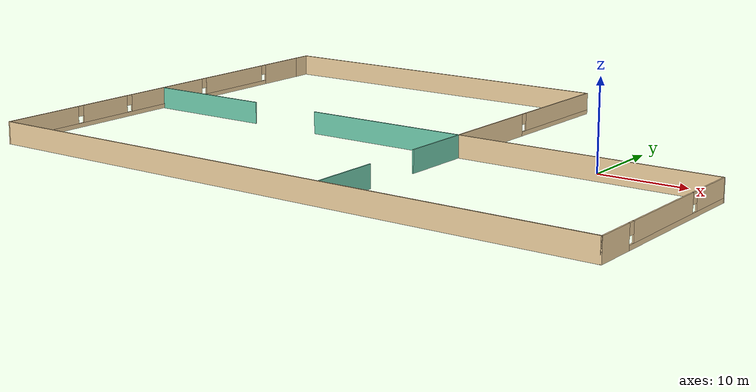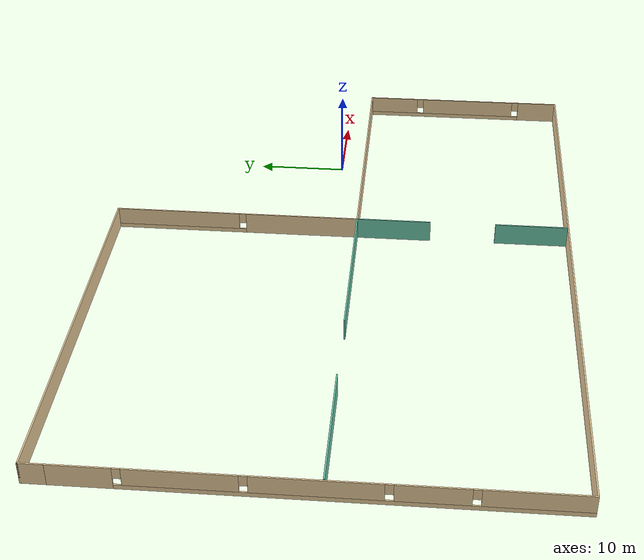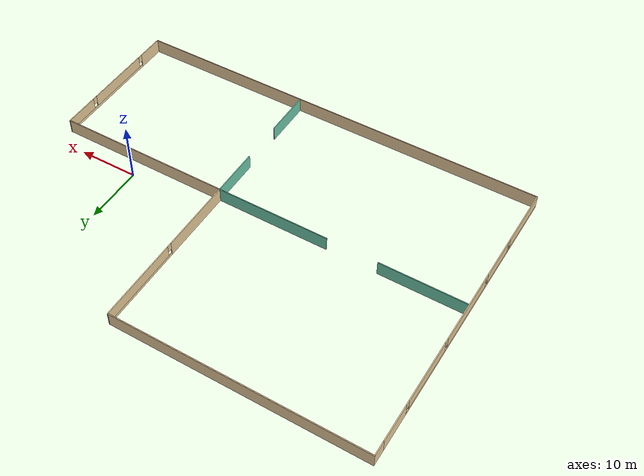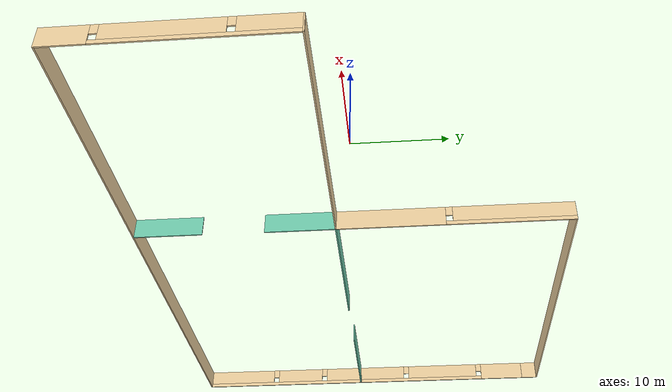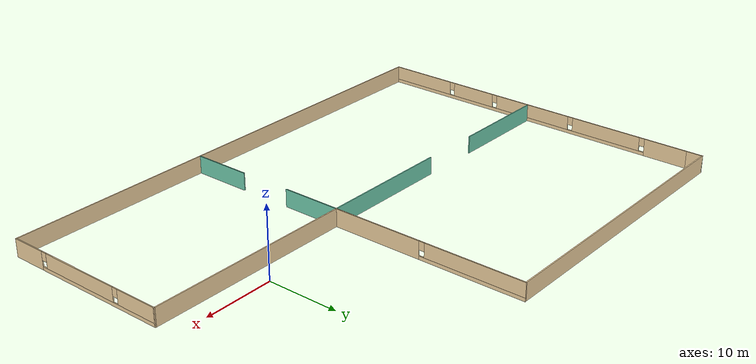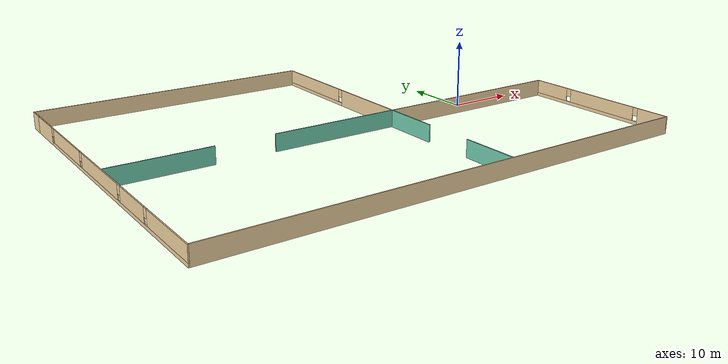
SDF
<?xml version='1.0'?>
<sdf version='1.6'>
  <model name='office'>
    <pose frame=''>-21.3047 -0.970661 0 0 -0 0</pose>
    <link name='Wall_61'>
      <pose frame=''>-36.05 -1.1751 0 0 0 -1.5708</pose>
      <visual name='Wall_61_Visual_0'>
        <pose frame=''>-21.7056 0 1.25 0 -0 0</pose>
        <geometry>
          <box>
            <size>6.33884 0.15 2.5</size>
          </box>
        </geometry>
        <material>
          <script>
            <uri>file://media/materials/scripts/gazebo.material</uri>
            <name>Gazebo/Grey</name>
          </script>
          <ambient>0.921569 0.807843 0.615686 1</ambient>
        </material>
        <meta>
          <layer>0</layer>
        </meta>
      </visual>
      <collision name='Wall_61_Collision_0'>
        <geometry>
          <box>
            <size>6.33884 0.15 2.5</size>
          </box>
        </geometry>
        <pose frame=''>-21.7056 0 1.25 0 -0 0</pose>
      </collision>
      <visual name='Wall_61_Visual_1'>
        <pose frame=''>3.16942 0 0.25 0 -0 0</pose>
        <geometry>
          <box>
            <size>43.4112 0.15 0.5</size>
          </box>
        </geometry>
        <material>
          <script>
            <uri>file://media/materials/scripts/gazebo.material</uri>
            <name>Gazebo/Grey</name>
          </script>
          <ambient>0.921569 0.807843 0.615686 1</ambient>
        </material>
        <meta>
          <layer>0</layer>
        </meta>
      </visual>
      <collision name='Wall_61_Collision_1'>
        <geometry>
          <box>
            <size>43.4112 0.15 0.5</size>
          </box>
        </geometry>
        <pose frame=''>3.16942 0 0.25 0 -0 0</pose>
      </collision>
      <visual name='Wall_61_Visual_2'>
        <pose frame=''>-12.3837 0 1.5 0 -0 0</pose>
        <geometry>
          <box>
            <size>10.705 0.15 2</size>
          </box>
        </geometry>
        <material>
          <script>
            <uri>file://media/materials/scripts/gazebo.material</uri>
            <name>Gazebo/Grey</name>
          </script>
          <ambient>0.921569 0.807843 0.615686 1</ambient>
        </material>
        <meta>
          <layer>0</layer>
        </meta>
      </visual>
      <collision name='Wall_61_Collision_2'>
        <geometry>
          <box>
            <size>10.705 0.15 2</size>
          </box>
        </geometry>
        <pose frame=''>-12.3837 0 1.5 0 -0 0</pose>
      </collision>
      <visual name='Wall_61_Visual_3'>
        <pose frame=''>-0.074173 0 1.5 0 -0 0</pose>
        <geometry>
          <box>
            <size>12.314 0.15 2</size>
          </box>
        </geometry>
        <material>
          <script>
            <uri>file://media/materials/scripts/gazebo.material</uri>
            <name>Gazebo/Grey</name>
          </script>
          <ambient>0.921569 0.807843 0.615686 1</ambient>
        </material>
        <meta>
          <layer>0</layer>
        </meta>
      </visual>
      <collision name='Wall_61_Collision_3'>
        <geometry>
          <box>
            <size>12.314 0.15 2</size>
          </box>
        </geometry>
        <pose frame=''>-0.074173 0 1.5 0 -0 0</pose>
      </collision>
      <visual name='Wall_61_Visual_4'>
        <pose frame=''>10.3849 0 1.5 0 -0 0</pose>
        <geometry>
          <box>
            <size>7.00407 0.15 2</size>
          </box>
        </geometry>
        <material>
          <script>
            <uri>file://media/materials/scripts/gazebo.material</uri>
            <name>Gazebo/Grey</name>
          </script>
          <ambient>0.921569 0.807843 0.615686 1</ambient>
        </material>
        <meta>
          <layer>0</layer>
        </meta>
      </visual>
      <collision name='Wall_61_Collision_4'>
        <geometry>
          <box>
            <size>7.00407 0.15 2</size>
          </box>
        </geometry>
        <pose frame=''>10.3849 0 1.5 0 -0 0</pose>
      </collision>
      <visual name='Wall_61_Visual_5'>
        <pose frame=''>19.781 0 1.5 0 -0 0</pose>
        <geometry>
          <box>
            <size>10.1881 0.15 2</size>
          </box>
        </geometry>
        <material>
          <script>
            <uri>file://media/materials/scripts/gazebo.material</uri>
            <name>Gazebo/Grey</name>
          </script>
          <ambient>0.921569 0.807843 0.615686 1</ambient>
        </material>
        <meta>
          <layer>0</layer>
        </meta>
      </visual>
      <collision name='Wall_61_Collision_5'>
        <geometry>
          <box>
            <size>10.1881 0.15 2</size>
          </box>
        </geometry>
        <pose frame=''>19.781 0 1.5 0 -0 0</pose>
      </collision>
      <visual name='Wall_61_Visual_6'>
        <pose frame=''>-18.1362 0 1.9 0 -0 0</pose>
        <geometry>
          <box>
            <size>0.8 0.15 1.2</size>
          </box>
        </geometry>
        <material>
          <script>
            <uri>file://media/materials/scripts/gazebo.material</uri>
            <name>Gazebo/Grey</name>
          </script>
          <ambient>0.921569 0.807843 0.615686 1</ambient>
        </material>
        <meta>
          <layer>0</layer>
        </meta>
      </visual>
      <collision name='Wall_61_Collision_6'>
        <geometry>
          <box>
            <size>0.8 0.15 1.2</size>
          </box>
        </geometry>
        <pose frame=''>-18.1362 0 1.9 0 -0 0</pose>
      </collision>
      <visual name='Wall_61_Visual_7'>
        <pose frame=''>-6.6312 0 1.9 0 -0 0</pose>
        <geometry>
          <box>
            <size>0.8 0.15 1.2</size>
          </box>
        </geometry>
        <material>
          <script>
            <uri>file://media/materials/scripts/gazebo.material</uri>
            <name>Gazebo/Grey</name>
          </script>
          <ambient>0.921569 0.807843 0.615686 1</ambient>
        </material>
        <meta>
          <layer>0</layer>
        </meta>
      </visual>
      <collision name='Wall_61_Collision_7'>
        <geometry>
          <box>
            <size>0.8 0.15 1.2</size>
          </box>
        </geometry>
        <pose frame=''>-6.6312 0 1.9 0 -0 0</pose>
      </collision>
      <visual name='Wall_61_Visual_8'>
        <pose frame=''>6.48285 0 1.9 0 -0 0</pose>
        <geometry>
          <box>
            <size>0.8 0.15 1.2</size>
          </box>
        </geometry>
        <material>
          <script>
            <uri>file://media/materials/scripts/gazebo.material</uri>
            <name>Gazebo/Grey</name>
          </script>
          <ambient>0.921569 0.807843 0.615686 1</ambient>
        </material>
        <meta>
          <layer>0</layer>
        </meta>
      </visual>
      <collision name='Wall_61_Collision_8'>
        <geometry>
          <box>
            <size>0.8 0.15 1.2</size>
          </box>
        </geometry>
        <pose frame=''>6.48285 0 1.9 0 -0 0</pose>
      </collision>
      <visual name='Wall_61_Visual_9'>
        <pose frame=''>14.2869 0 1.9 0 -0 0</pose>
        <geometry>
          <box>
            <size>0.8 0.15 1.2</size>
          </box>
        </geometry>
        <material>
          <script>
            <uri>file://media/materials/scripts/gazebo.material</uri>
            <name>Gazebo/Grey</name>
          </script>
          <ambient>0.921569 0.807843 0.615686 1</ambient>
        </material>
        <meta>
          <layer>0</layer>
        </meta>
      </visual>
      <collision name='Wall_61_Collision_9'>
        <geometry>
          <box>
            <size>0.8 0.15 1.2</size>
          </box>
        </geometry>
        <pose frame=''>14.2869 0 1.9 0 -0 0</pose>
      </collision>
    </link>
    <link name='Wall_62'>
      <collision name='Wall_62_Collision'>
        <geometry>
          <box>
            <size>72.25 0.15 2.5</size>
          </box>
        </geometry>
        <pose frame=''>0 0 1.25 0 -0 0</pose>
      </collision>
      <visual name='Wall_62_Visual'>
        <pose frame=''>0 0 1.25 0 -0 0</pose>
        <geometry>
          <box>
            <size>72.25 0.15 2.5</size>
          </box>
        </geometry>
        <material>
          <script>
            <uri>file://media/materials/scripts/gazebo.material</uri>
            <name>Gazebo/Grey</name>
          </script>
          <ambient>0.921569 0.807843 0.615686 1</ambient>
        </material>
        <meta>
          <layer>0</layer>
        </meta>
      </visual>
      <pose frame=''>1e-06 -25.9751 0 0 -0 0</pose>
    </link>
    <link name='Wall_63'>
      <pose frame=''>36.05 -13.9251 0 0 -0 1.5708</pose>
      <visual name='Wall_63_Visual_0'>
        <pose frame=''>-9.68595 0 1.25 0 -0 0</pose>
        <geometry>
          <box>
            <size>4.8781 0.15 2.5</size>
          </box>
        </geometry>
        <material>
          <script>
            <uri>file://media/materials/scripts/gazebo.material</uri>
            <name>Gazebo/Grey</name>
          </script>
          <ambient>0.921569 0.807843 0.615686 1</ambient>
        </material>
        <meta>
          <layer>0</layer>
        </meta>
      </visual>
      <collision name='Wall_63_Collision_0'>
        <geometry>
          <box>
            <size>4.8781 0.15 2.5</size>
          </box>
        </geometry>
        <pose frame=''>-9.68595 0 1.25 0 -0 0</pose>
      </collision>
      <visual name='Wall_63_Visual_1'>
        <pose frame=''>2.43905 0 0.25 0 -0 0</pose>
        <geometry>
          <box>
            <size>19.3719 0.15 0.5</size>
          </box>
        </geometry>
        <material>
          <script>
            <uri>file://media/materials/scripts/gazebo.material</uri>
            <name>Gazebo/Grey</name>
          </script>
          <ambient>0.921569 0.807843 0.615686 1</ambient>
        </material>
        <meta>
          <layer>0</layer>
        </meta>
      </visual>
      <collision name='Wall_63_Collision_1'>
        <geometry>
          <box>
            <size>19.3719 0.15 0.5</size>
          </box>
        </geometry>
        <pose frame=''>2.43905 0 0.25 0 -0 0</pose>
      </collision>
      <visual name='Wall_63_Visual_2'>
        <pose frame=''>-0.611693 0 1.5 0 -0 0</pose>
        <geometry>
          <box>
            <size>11.6704 0.15 2</size>
          </box>
        </geometry>
        <material>
          <script>
            <uri>file://media/materials/scripts/gazebo.material</uri>
            <name>Gazebo/Grey</name>
          </script>
          <ambient>0.921569 0.807843 0.615686 1</ambient>
        </material>
        <meta>
          <layer>0</layer>
        </meta>
      </visual>
      <collision name='Wall_63_Collision_2'>
        <geometry>
          <box>
            <size>11.6704 0.15 2</size>
          </box>
        </geometry>
        <pose frame=''>-0.611693 0 1.5 0 -0 0</pose>
      </collision>
      <visual name='Wall_63_Visual_3'>
        <pose frame=''>9.07426 0 1.5 0 -0 0</pose>
        <geometry>
          <box>
            <size>6.10149 0.15 2</size>
          </box>
        </geometry>
        <material>
          <script>
            <uri>file://media/materials/scripts/gazebo.material</uri>
            <name>Gazebo/Grey</name>
          </script>
          <ambient>0.921569 0.807843 0.615686 1</ambient>
        </material>
        <meta>
          <layer>0</layer>
        </meta>
      </visual>
      <collision name='Wall_63_Collision_3'>
        <geometry>
          <box>
            <size>6.10149 0.15 2</size>
          </box>
        </geometry>
        <pose frame=''>9.07426 0 1.5 0 -0 0</pose>
      </collision>
      <visual name='Wall_63_Visual_4'>
        <pose frame=''>-6.8469 0 1.9 0 -0 0</pose>
        <geometry>
          <box>
            <size>0.8 0.15 1.2</size>
          </box>
        </geometry>
        <material>
          <script>
            <uri>file://media/materials/scripts/gazebo.material</uri>
            <name>Gazebo/Grey</name>
          </script>
          <ambient>0.921569 0.807843 0.615686 1</ambient>
        </material>
        <meta>
          <layer>0</layer>
        </meta>
      </visual>
      <collision name='Wall_63_Collision_4'>
        <geometry>
          <box>
            <size>0.8 0.15 1.2</size>
          </box>
        </geometry>
        <pose frame=''>-6.8469 0 1.9 0 -0 0</pose>
      </collision>
      <visual name='Wall_63_Visual_5'>
        <pose frame=''>5.62351 0 1.9 0 -0 0</pose>
        <geometry>
          <box>
            <size>0.8 0.15 1.2</size>
          </box>
        </geometry>
        <material>
          <script>
            <uri>file://media/materials/scripts/gazebo.material</uri>
            <name>Gazebo/Grey</name>
          </script>
          <ambient>0.921569 0.807843 0.615686 1</ambient>
        </material>
        <meta>
          <layer>0</layer>
        </meta>
      </visual>
      <collision name='Wall_63_Collision_5'>
        <geometry>
          <box>
            <size>0.8 0.15 1.2</size>
          </box>
        </geometry>
        <pose frame=''>5.62351 0 1.9 0 -0 0</pose>
      </collision>
    </link>
    <link name='Wall_64'>
      <collision name='Wall_64_Collision'>
        <geometry>
          <box>
            <size>29.75 0.15 2.5</size>
          </box>
        </geometry>
        <pose frame=''>0 0 1.25 0 -0 0</pose>
      </collision>
      <visual name='Wall_64_Visual'>
        <pose frame=''>0 0 1.25 0 -0 0</pose>
        <geometry>
          <box>
            <size>29.75 0.15 2.5</size>
          </box>
        </geometry>
        <material>
          <script>
            <uri>file://media/materials/scripts/gazebo.material</uri>
            <name>Gazebo/Grey</name>
          </script>
          <ambient>0.921569 0.807843 0.615686 1</ambient>
        </material>
        <meta>
          <layer>0</layer>
        </meta>
      </visual>
      <pose frame=''>21.25 -1.8751 0 0 -0 3.14159</pose>
    </link>
    <link name='Wall_69'>
      <collision name='Wall_69_Collision'>
        <geometry>
          <box>
            <size>2.5 0.15 2.5</size>
          </box>
        </geometry>
        <pose frame=''>0 0 1.25 0 -0 0</pose>
      </collision>
      <visual name='Wall_69_Visual'>
        <pose frame=''>0 0 1.25 0 -0 0</pose>
        <geometry>
          <box>
            <size>2.5 0.15 2.5</size>
          </box>
        </geometry>
        <material>
          <script>
            <uri>file://media/materials/scripts/gazebo.material</uri>
            <name>Gazebo/Grey</name>
          </script>
          <ambient>0.921569 0.807843 0.615686 1</ambient>
        </material>
        <meta>
          <layer>0</layer>
        </meta>
      </visual>
      <pose frame=''>-36.05 24.7999 0 0 -0 1.5708</pose>
    </link>
    <link name='Wall_70'>
      <collision name='Wall_70_Collision'>
        <geometry>
          <box>
            <size>42.5 0.15 2.5</size>
          </box>
        </geometry>
        <pose frame=''>0 0 1.25 0 -0 0</pose>
      </collision>
      <visual name='Wall_70_Visual'>
        <pose frame=''>0 0 1.25 0 -0 0</pose>
        <geometry>
          <box>
            <size>42.5 0.15 2.5</size>
          </box>
        </geometry>
        <material>
          <script>
            <uri>file://media/materials/scripts/gazebo.material</uri>
            <name>Gazebo/Grey</name>
          </script>
          <ambient>0.921569 0.807843 0.615686 1</ambient>
        </material>
        <meta>
          <layer>0</layer>
        </meta>
      </visual>
      <pose frame=''>-14.875 25.9749 0 0 -0 0</pose>
    </link>
    <link name='Wall_74'>
      <pose frame=''>6.45 12.0499 0 0 -0 1.5708</pose>
      <visual name='Wall_74_Visual_0'>
        <pose frame=''>-7.52019 0 1.25 0 -0 0</pose>
        <geometry>
          <box>
            <size>12.96 0.15 2.5</size>
          </box>
        </geometry>
        <material>
          <script>
            <uri>file://media/materials/scripts/gazebo.material</uri>
            <name>Gazebo/Grey</name>
          </script>
          <ambient>0.921569 0.807843 0.615686 1</ambient>
        </material>
        <meta>
          <layer>0</layer>
        </meta>
      </visual>
      <collision name='Wall_74_Collision_0'>
        <geometry>
          <box>
            <size>12.96 0.15 2.5</size>
          </box>
        </geometry>
        <pose frame=''>-7.52019 0 1.25 0 -0 0</pose>
      </collision>
      <visual name='Wall_74_Visual_1'>
        <pose frame=''>6.48001 0 0.25 0 -0 0</pose>
        <geometry>
          <box>
            <size>15.0404 0.15 0.5</size>
          </box>
        </geometry>
        <material>
          <script>
            <uri>file://media/materials/scripts/gazebo.material</uri>
            <name>Gazebo/Grey</name>
          </script>
          <ambient>0.921569 0.807843 0.615686 1</ambient>
        </material>
        <meta>
          <layer>0</layer>
        </meta>
      </visual>
      <collision name='Wall_74_Collision_1'>
        <geometry>
          <box>
            <size>15.0404 0.15 0.5</size>
          </box>
        </geometry>
        <pose frame=''>6.48001 0 0.25 0 -0 0</pose>
      </collision>
      <visual name='Wall_74_Visual_2'>
        <pose frame=''>6.88001 0 1.5 0 -0 0</pose>
        <geometry>
          <box>
            <size>14.2404 0.15 2</size>
          </box>
        </geometry>
        <material>
          <script>
            <uri>file://media/materials/scripts/gazebo.material</uri>
            <name>Gazebo/Grey</name>
          </script>
          <ambient>0.921569 0.807843 0.615686 1</ambient>
        </material>
        <meta>
          <layer>0</layer>
        </meta>
      </visual>
      <collision name='Wall_74_Collision_2'>
        <geometry>
          <box>
            <size>14.2404 0.15 2</size>
          </box>
        </geometry>
        <pose frame=''>6.88001 0 1.5 0 -0 0</pose>
      </collision>
      <visual name='Wall_74_Visual_3'>
        <pose frame=''>-0.640185 0 1.9 0 -0 0</pose>
        <geometry>
          <box>
            <size>0.8 0.15 1.2</size>
          </box>
        </geometry>
        <material>
          <script>
            <uri>file://media/materials/scripts/gazebo.material</uri>
            <name>Gazebo/Grey</name>
          </script>
          <ambient>0.921569 0.807843 0.615686 1</ambient>
        </material>
        <meta>
          <layer>0</layer>
        </meta>
      </visual>
      <collision name='Wall_74_Collision_3'>
        <geometry>
          <box>
            <size>0.8 0.15 1.2</size>
          </box>
        </geometry>
        <pose frame=''>-0.640185 0 1.9 0 -0 0</pose>
      </collision>
    </link>
    <link name='Wall_76'>
      <collision name='Wall_76_Collision'>
        <geometry>
          <box>
            <size>19.25 0.15 2.5</size>
          </box>
        </geometry>
        <pose frame=''>0 0 1.25 0 -0 0</pose>
      </collision>
      <visual name='Wall_76_Visual'>
        <pose frame=''>0 0 1.25 0 -0 0</pose>
        <geometry>
          <box>
            <size>19.25 0.15 2.5</size>
          </box>
        </geometry>
        <material>
          <script>
            <uri>file://media/materials/scripts/gazebo.material</uri>
            <name>Gazebo/Grey</name>
          </script>
          <ambient>0.435294 0.796078 0.67451 1</ambient>
        </material>
        <meta>
          <layer>0</layer>
        </meta>
      </visual>
      <pose frame=''>-3.1 -1.8751 0 0 -0 3.14159</pose>
    </link>
    <link name='Wall_78'>
      <collision name='Wall_78_Collision'>
        <geometry>
          <box>
            <size>14.5 0.15 2.5</size>
          </box>
        </geometry>
        <pose frame=''>0 0 1.25 0 -0 0</pose>
      </collision>
      <visual name='Wall_78_Visual'>
        <pose frame=''>0 0 1.25 0 -0 0</pose>
        <geometry>
          <box>
            <size>14.5 0.15 2.5</size>
          </box>
        </geometry>
        <material>
          <script>
            <uri>file://media/materials/scripts/gazebo.material</uri>
            <name>Gazebo/Grey</name>
          </script>
          <ambient>0.435294 0.796078 0.67451 1</ambient>
        </material>
        <meta>
          <layer>0</layer>
        </meta>
      </visual>
      <pose frame=''>-28.6169 -1.80663 0 0 -0 3.14159</pose>
    </link>
    <link name='Wall_80'>
      <collision name='Wall_80_Collision'>
        <geometry>
          <box>
            <size>8.5 0.15 2.5</size>
          </box>
        </geometry>
        <pose frame=''>0 0 1.25 0 -0 0</pose>
      </collision>
      <visual name='Wall_80_Visual'>
        <pose frame=''>0 0 1.25 0 -0 0</pose>
        <geometry>
          <box>
            <size>8.5 0.15 2.5</size>
          </box>
        </geometry>
        <material>
          <script>
            <uri>file://media/materials/scripts/gazebo.material</uri>
            <name>Gazebo/Grey</name>
          </script>
          <ambient>0.435294 0.796078 0.67451 1</ambient>
        </material>
        <meta>
          <layer>0</layer>
        </meta>
      </visual>
      <pose frame=''>6.45 -6.0501 0 0 0 -1.5708</pose>
    </link>
    <link name='Wall_82'>
      <collision name='Wall_82_Collision'>
        <geometry>
          <box>
            <size>8.25 0.15 2.5</size>
          </box>
        </geometry>
        <pose frame=''>0 0 1.25 0 -0 0</pose>
      </collision>
      <visual name='Wall_82_Visual'>
        <pose frame=''>0 0 1.25 0 -0 0</pose>
        <geometry>
          <box>
            <size>8.25 0.15 2.5</size>
          </box>
        </geometry>
        <material>
          <script>
            <uri>file://media/materials/scripts/gazebo.material</uri>
            <name>Gazebo/Grey</name>
          </script>
          <ambient>0.435294 0.796078 0.67451 1</ambient>
        </material>
        <meta>
          <layer>0</layer>
        </meta>
      </visual>
      <pose frame=''>6.52407 -21.8233 0 0 0 -1.5708</pose>
    </link>
    <static>1</static>
  </model>
</sdf>
